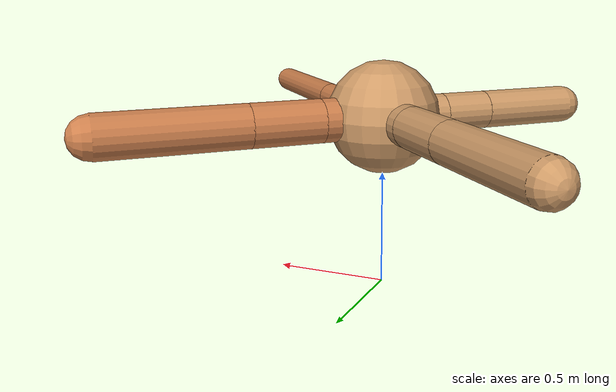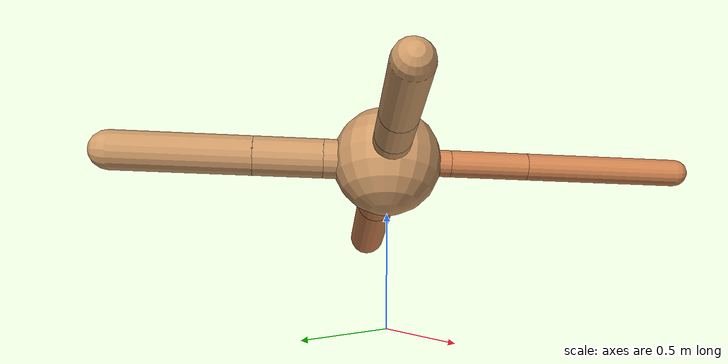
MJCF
<?xml version="1.0" ?>
<mujoco model="ant">

	<compiler angle="degree" coordinate="local" inertiafromgeom="true"/>

	<option integrator="RK4" timestep="0.01"/>

	<custom>

		<numeric data="0.0 0.0 0.55 1.0 0.0 0.0 0.0 0.0 1.0 0.0 -1.0 0.0 -1.0 0.0 1.0" name="init_qpos"/>

	</custom>

	<default>

		<joint armature="1" damping="1" limited="true"/>

		<geom conaffinity="0" condim="3" density="5.0" friction="1.5 0.1 0.1" margin="0.01" rgba="0.8 0.6 0.4 1"/>

	</default>

	<worldbody>

		<body name="torso" pos="0 0 0.75">

			<geom name="torso_geom" pos="0 0 0" size="0.24262448335421097" type="sphere"/>

			<!--joint armature="0" damping="0" limited="false" margin="0.01" name="root" pos="0 0 0" type="free"/-->

			<body name="front_left_leg" pos="0 0 0">

				<geom fromto="0 0 0 0.2 0.2 0" name="aux_1_geom" size="0.09282595807557702" type="capsule" rgba=".8 .5 .3 1"/>

				<body name="aux_1" pos="0.2 0.2 0">

					<joint axis="0 0 1" name="hip_1" pos="0.0 0.0 0.0" range="-40 40" type="hinge"/>

					<geom fromto="0 0 0 0.2168513708623522 0.2168513708623522 0" name="left_leg_geom" size="0.09282595807557702" type="capsule" rgba=".8 .5 .3 1"/>

					<body pos="0.2168513708623522 0.2168513708623522 0" name="front_left_foot">

						<joint axis="-1 1 0" name="ankle_1" pos="0.0 0.0 0.0" range="30 100" type="hinge"/>

						<geom fromto="0 0 0 0.4337027417247044 0.4337027417247044 0" name="left_ankle_geom" size="0.09282595807557702" type="capsule" rgba=".8 .5 .3 1"/>

					</body>

				</body>

			</body>

			<body name="front_right_leg" pos="0 0 0">

				<geom fromto="0 0 0 -0.2 0.2 0" name="aux_2_geom" size="0.08757284885281108" type="capsule"/>

				<body name="aux_2" pos="-0.2 0.2 0">

					<joint axis="0 0 1" name="hip_2" pos="0.0 0.0 0.0" range="-40 40" type="hinge"/>

					<geom fromto="0 0 0 -0.21579150068741282 0.21579150068741282 0" name="right_leg_geom" size="0.08757284885281108" type="capsule"/>

					<body pos="-0.21579150068741282 0.21579150068741282 0" name="front_right_foot">

						<joint axis="1 1 0" name="ankle_2" pos="0.0 0.0 0.0" range="-100 -30" type="hinge"/>

						<geom fromto="0 0 0 -0.43158300137482564 0.43158300137482564 0" name="right_ankle_geom" size="0.08757284885281108" type="capsule"/>

					</body>

				</body>

			</body>

			<body name="left_back_leg" pos="0 0 0">

				<geom fromto="0 0 0 -0.2 -0.2 0" name="aux_3_geom" size="0.08280184516981878" type="capsule"/>

				<body name="aux_3" pos="-0.2 -0.2 0">

					<joint axis="0 0 1" name="hip_3" pos="0.0 0.0 0.0" range="-40 40" type="hinge"/>

					<geom fromto="0 0 0 -0.1473773559080925 -0.1473773559080925 0" name="back_leg_geom" size="0.08280184516981878" type="capsule"/>

					<body pos="-0.1473773559080925 -0.1473773559080925 0" name="left_back_foot">

						<joint axis="-1 1 0" name="ankle_3" pos="0.0 0.0 0.0" range="-100 -30" type="hinge"/>

						<geom fromto="0 0 0 -0.294754711816185 -0.294754711816185 0" name="third_ankle_geom" size="0.08280184516981878" type="capsule"/>

					</body>

				</body>

			</body>

			<body name="right_back_leg" pos="0 0 0">

				<geom fromto="0 0 0 0.2 -0.2 0" name="aux_4_geom" size="0.060033136844605435" type="capsule" rgba=".8 .5 .3 1"/>

				<body name="aux_4" pos="0.2 -0.2 0">

					<joint axis="0 0 1" name="hip_4" pos="0.0 0.0 0.0" range="-40 40" type="hinge"/>

					<geom fromto="0 0 0 0.2463587446506794 -0.2463587446506794 0" name="rightback_leg_geom" size="0.060033136844605435" type="capsule" rgba=".8 .5 .3 1"/>

					<body pos="0.2463587446506794 -0.2463587446506794 0" name="right_back_foot">

						<joint axis="1 1 0" name="ankle_4" pos="0.0 0.0 0.0" range="30 100" type="hinge"/>

						<geom fromto="0 0 0 0.4927174893013588 -0.4927174893013588 0" name="fourth_ankle_geom" size="0.060033136844605435" type="capsule" rgba=".8 .5 .3 1"/>

					</body>

				</body>

			</body>

		</body>

	</worldbody>

	<actuator>

		<motor ctrllimited="true" ctrlrange="-1.0 1.0" joint="hip_4" gear="150"/>

		<motor ctrllimited="true" ctrlrange="-1.0 1.0" joint="ankle_4" gear="150"/>

		<motor ctrllimited="true" ctrlrange="-1.0 1.0" joint="hip_1" gear="150"/>

		<motor ctrllimited="true" ctrlrange="-1.0 1.0" joint="ankle_1" gear="150"/>

		<motor ctrllimited="true" ctrlrange="-1.0 1.0" joint="hip_2" gear="150"/>

		<motor ctrllimited="true" ctrlrange="-1.0 1.0" joint="ankle_2" gear="150"/>

		<motor ctrllimited="true" ctrlrange="-1.0 1.0" joint="hip_3" gear="150"/>

		<motor ctrllimited="true" ctrlrange="-1.0 1.0" joint="ankle_3" gear="150"/>

	</actuator>

</mujoco>
